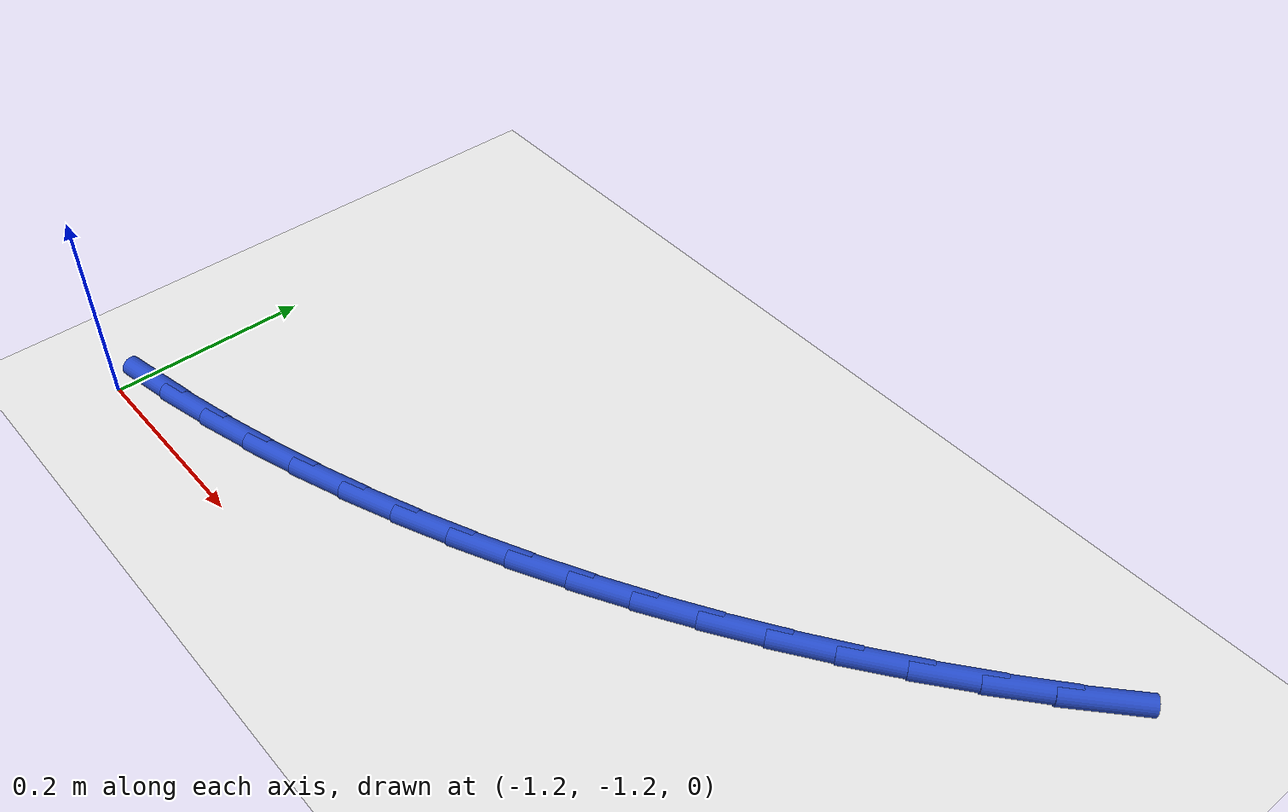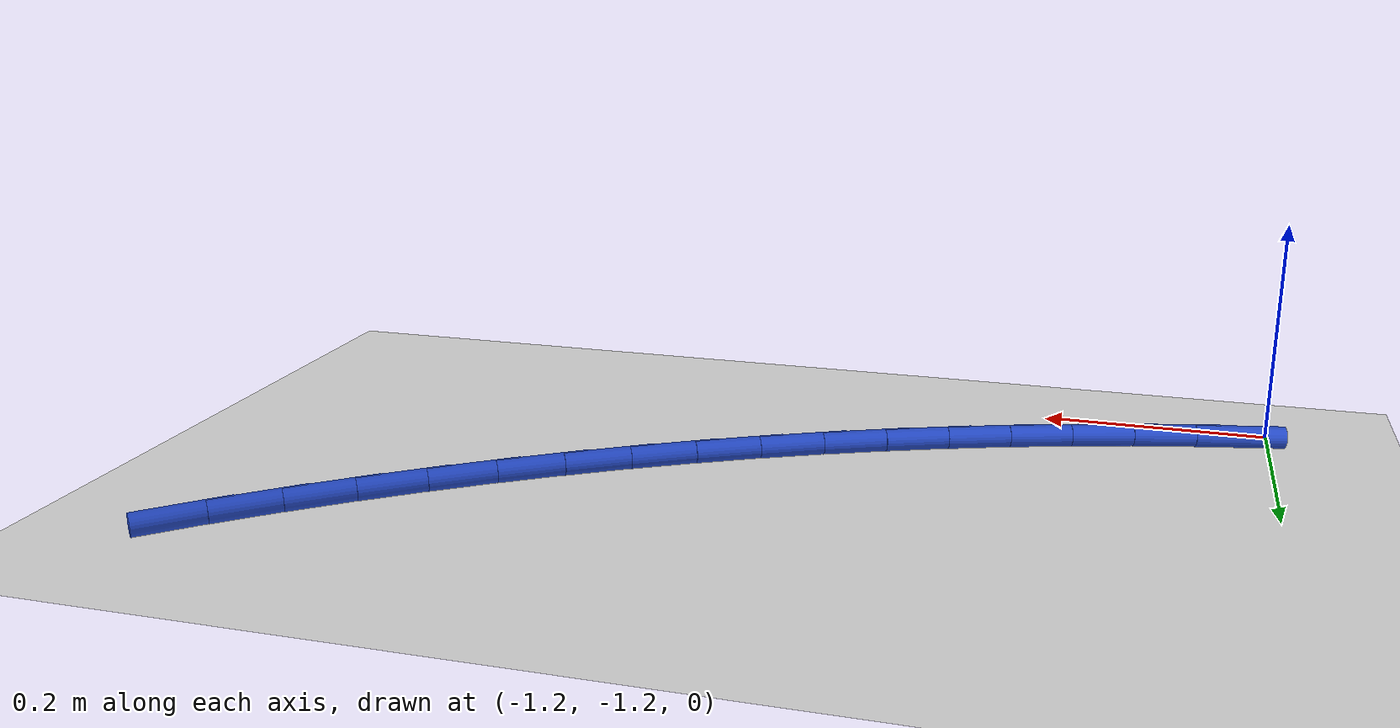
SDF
<sdf version="1.6">
 <world name="default">
  <model name="ground_plane">
   <static>1</static>
   <link name="link">
    <collision name="collision">
     <geometry><plane><normal>0 0 1</normal><size>100 100</size></plane></geometry>
     <surface><friction><ode><mu>100</mu><mu2>50</mu2></ode></friction></surface>
    </collision>
    <visual name="visual">
     <cast_shadows>0</cast_shadows>
     <geometry><plane><normal>0 0 1</normal><size>100 100</size></plane></geometry>
     <material>
      <script><uri>file://media/materials/scripts/gazebo.material</uri><name>Gazebo/WhiteGlow</name></script>
     </material>
    </visual>
   </link>
  </model>
  <model name="line">
   <link name="link_99">
    <pose>-1.1747221083875923 -1.1692757073905449 0.01 0 1.57 0.20879415012106034</pose>
    <collision name="collision">
     <geometry><cylinder><radius>0.01</radius><length>0.08</length></cylinder></geometry>
    </collision>
    <visual name="visual">
     <material>
      <script><name>Gazebo/Blue</name><uri>file://media/materials/scripts/gazebo.material</uri></script>
     </material>
     <geometry><cylinder><radius>0.01</radius><length>0.08</length></cylinder></geometry>
    </visual>
   </link>
   <link name="link_100">
    <pose>-1.1195367083526704 -1.157582906932271 0.01 0 1.57 0.24640888322853638</pose>
    <collision name="collision">
     <geometry><cylinder><radius>0.01</radius><length>0.08</length></cylinder></geometry>
    </collision>
    <visual name="visual">
     <material>
      <script><name>Gazebo/Blue</name><uri>file://media/materials/scripts/gazebo.material</uri></script>
     </material>
     <geometry><cylinder><radius>0.01</radius><length>0.08</length></cylinder></geometry>
    </visual>
   </link>
   <link name="link_101">
    <pose>-1.0648541924707942 -1.1438291521475572 0.01 0 1.57 0.2822756811023988</pose>
    <collision name="collision">
     <geometry><cylinder><radius>0.01</radius><length>0.08</length></cylinder></geometry>
    </collision>
    <visual name="visual">
     <material>
      <script><name>Gazebo/Blue</name><uri>file://media/materials/scripts/gazebo.material</uri></script>
     </material>
     <geometry><cylinder><radius>0.01</radius><length>0.08</length></cylinder></geometry>
    </visual>
   </link>
   <link name="link_102">
    <pose>-1.0105332957603106 -1.1280750168292641 0.01 0 1.57 0.3164848656287157</pose>
    <collision name="collision">
     <geometry><cylinder><radius>0.01</radius><length>0.08</length></cylinder></geometry>
    </collision>
    <visual name="visual">
     <material>
      <script><name>Gazebo/Blue</name><uri>file://media/materials/scripts/gazebo.material</uri></script>
     </material>
     <geometry><cylinder><radius>0.01</radius><length>0.08</length></cylinder></geometry>
    </visual>
   </link>
   <link name="link_103">
    <pose>-0.9564908443903585 -1.110376504970777 0.01 0 1.57 0.34992560085424645</pose>
    <collision name="collision">
     <geometry><cylinder><radius>0.01</radius><length>0.08</length></cylinder></geometry>
    </collision>
    <visual name="visual">
     <material>
      <script><name>Gazebo/Blue</name><uri>file://media/materials/scripts/gazebo.material</uri></script>
     </material>
     <geometry><cylinder><radius>0.01</radius><length>0.08</length></cylinder></geometry>
    </visual>
   </link>
   <link name="link_104">
    <pose>-0.902788680901581 -1.0907782127050905 0.01 0 1.57 0.38283609553056863</pose>
    <collision name="collision">
     <geometry><cylinder><radius>0.01</radius><length>0.08</length></cylinder></geometry>
    </collision>
    <visual name="visual">
     <material>
      <script><name>Gazebo/Blue</name><uri>file://media/materials/scripts/gazebo.material</uri></script>
     </material>
     <geometry><cylinder><radius>0.01</radius><length>0.08</length></cylinder></geometry>
    </visual>
   </link>
   <link name="link_105">
    <pose>-0.8495109034823205 -1.069322985402031 0.01 0 1.57 0.41531356795465824</pose>
    <collision name="collision">
     <geometry><cylinder><radius>0.01</radius><length>0.08</length></cylinder></geometry>
    </collision>
    <visual name="visual">
     <material>
      <script><name>Gazebo/Blue</name><uri>file://media/materials/scripts/gazebo.material</uri></script>
     </material>
     <geometry><cylinder><radius>0.01</radius><length>0.08</length></cylinder></geometry>
    </visual>
   </link>
   <link name="link_106">
    <pose>-0.7967416103209207 -1.0460536684314259 0.01 0 1.57 0.44745361801637146</pose>
    <collision name="collision">
     <geometry><cylinder><radius>0.01</radius><length>0.08</length></cylinder></geometry>
    </collision>
    <visual name="visual">
     <material>
      <script><name>Gazebo/Blue</name><uri>file://media/materials/scripts/gazebo.material</uri></script>
     </material>
     <geometry><cylinder><radius>0.01</radius><length>0.08</length></cylinder></geometry>
    </visual>
   </link>
   <link name="link_107">
    <pose>-0.7445648996057233 -1.0210131071631006 0.01 0 1.57 0.47935029987536487</pose>
    <collision name="collision">
     <geometry><cylinder><radius>0.01</radius><length>0.08</length></cylinder></geometry>
    </collision>
    <visual name="visual">
     <material>
      <script><name>Gazebo/Blue</name><uri>file://media/materials/scripts/gazebo.material</uri></script>
     </material>
     <geometry><cylinder><radius>0.01</radius><length>0.08</length></cylinder></geometry>
    </visual>
   </link>
   <link name="link_108">
    <pose>-0.6930648695250725 -0.9942441469668832 0.01 0 1.57 0.5110962527341899</pose>
    <collision name="collision">
     <geometry><cylinder><radius>0.01</radius><length>0.08</length></cylinder></geometry>
    </collision>
    <visual name="visual">
     <material>
      <script><name>Gazebo/Blue</name><uri>file://media/materials/scripts/gazebo.material</uri></script>
     </material>
     <geometry><cylinder><radius>0.01</radius><length>0.08</length></cylinder></geometry>
    </visual>
   </link>
   <link name="link_109">
    <pose>-0.6423256182673112 -0.9657896332126001 0.01 0 1.57 0.5427828659364388</pose>
    <collision name="collision">
     <geometry><cylinder><radius>0.01</radius><length>0.08</length></cylinder></geometry>
    </collision>
    <visual name="visual">
     <material>
      <script><name>Gazebo/Blue</name><uri>file://media/materials/scripts/gazebo.material</uri></script>
     </material>
     <geometry><cylinder><radius>0.01</radius><length>0.08</length></cylinder></geometry>
    </visual>
   </link>
   <link name="link_110">
    <pose>-0.5924312440207813 -0.9356924112700772 0.01 0 1.57 0.5745004574581802</pose>
    <collision name="collision">
     <geometry><cylinder><radius>0.01</radius><length>0.08</length></cylinder></geometry>
    </collision>
    <visual name="visual">
     <material>
      <script><name>Gazebo/Blue</name><uri>file://media/materials/scripts/gazebo.material</uri></script>
     </material>
     <geometry><cylinder><radius>0.01</radius><length>0.08</length></cylinder></geometry>
    </visual>
   </link>
   <link name="link_111">
    <pose>-0.5434658449738272 -0.9039953265091426 0.01 0 1.57 0.6063384467540421</pose>
    <collision name="collision">
     <geometry><cylinder><radius>0.01</radius><length>0.08</length></cylinder></geometry>
    </collision>
    <visual name="visual">
     <material>
      <script><name>Gazebo/Blue</name><uri>file://media/materials/scripts/gazebo.material</uri></script>
     </material>
     <geometry><cylinder><radius>0.01</radius><length>0.08</length></cylinder></geometry>
    </visual>
   </link>
   <link name="link_112">
    <pose>-0.4955135193147913 -0.8707412242996224 0.01 0 1.57 0.6383855039245655</pose>
    <collision name="collision">
     <geometry><cylinder><radius>0.01</radius><length>0.08</length></cylinder></geometry>
    </collision>
    <visual name="visual">
     <material>
      <script><name>Gazebo/Blue</name><uri>file://media/materials/scripts/gazebo.material</uri></script>
     </material>
     <geometry><cylinder><radius>0.01</radius><length>0.08</length></cylinder></geometry>
    </visual>
   </link>
   <link name="link_113">
    <pose>-0.4486583652320165 -0.8359729500113435 0.01 0 1.57 0.6708700061144691</pose>
    <collision name="collision">
     <geometry><cylinder><radius>0.01</radius><length>0.08</length></cylinder></geometry>
    </collision>
    <visual name="visual">
     <material>
      <script><name>Gazebo/Blue</name><uri>file://media/materials/scripts/gazebo.material</uri></script>
     </material>
     <geometry><cylinder><radius>0.01</radius><length>0.08</length></cylinder></geometry>
    </visual>
   </link>
   <link name="link_114">
    <pose>-0.4029907512223318 -0.7997278785479774 0.01 0 1.57 0.7057161920182301</pose>
    <collision name="collision">
     <geometry><cylinder><radius>0.01</radius><length>0.08</length></cylinder></geometry>
    </collision>
    <visual name="visual">
     <material>
      <script><name>Gazebo/Blue</name><uri>file://media/materials/scripts/gazebo.material</uri></script>
     </material>
     <geometry><cylinder><radius>0.01</radius><length>0.08</length></cylinder></geometry>
    </visual>
   </link>
   <link name="link_115">
    <pose>-0.35868239963707393 -0.7619724084794732 0.01 0 1.57 0.7443398689226738</pose>
    <collision name="collision">
     <geometry><cylinder><radius>0.01</radius><length>0.08</length></cylinder></geometry>
    </collision>
    <visual name="visual">
     <material>
      <script><name>Gazebo/Blue</name><uri>file://media/materials/scripts/gazebo.material</uri></script>
     </material>
     <geometry><cylinder><radius>0.01</radius><length>0.08</length></cylinder></geometry>
    </visual>
   </link>
  </model>
 </world>
</sdf>
